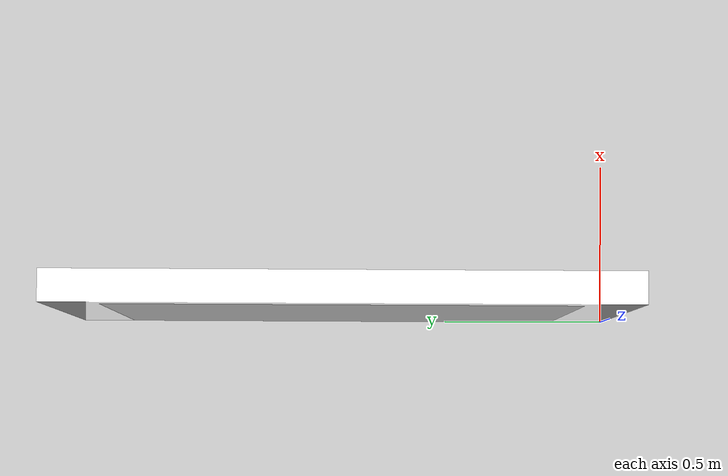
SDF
<?xml version="1.0" ?>
<sdf version="1.6">
  <model name="Door-Double-2">
  <static>true</static>
    <link name="link">
	 <collision name="collision">
		<geometry>
		  <mesh>
		    <uri>model://Door-Double-2/meshes/model.dae</uri>
		  </mesh>
		</geometry>
	      </collision>
	 <visual name="textures">
	   <geometry>
	     <mesh>
	       <uri>model://Door-Double-2/meshes/model.dae</uri>
	     </mesh>
	   </geometry>
	   <material>
	     <script>
	       <uri>model://Door-Double-2/materials/textures</uri>
	     </script>
	   </material>
	 </visual>
    </link>
  </model>
</sdf>
